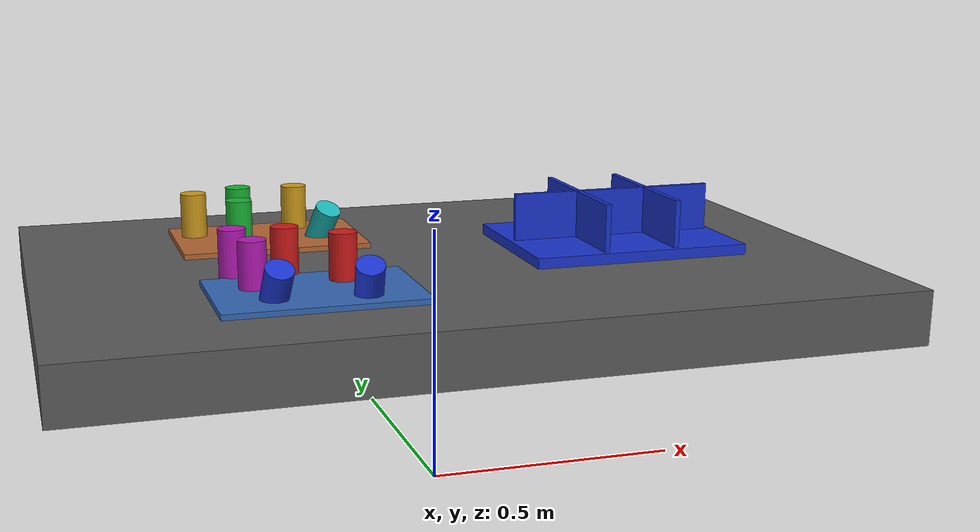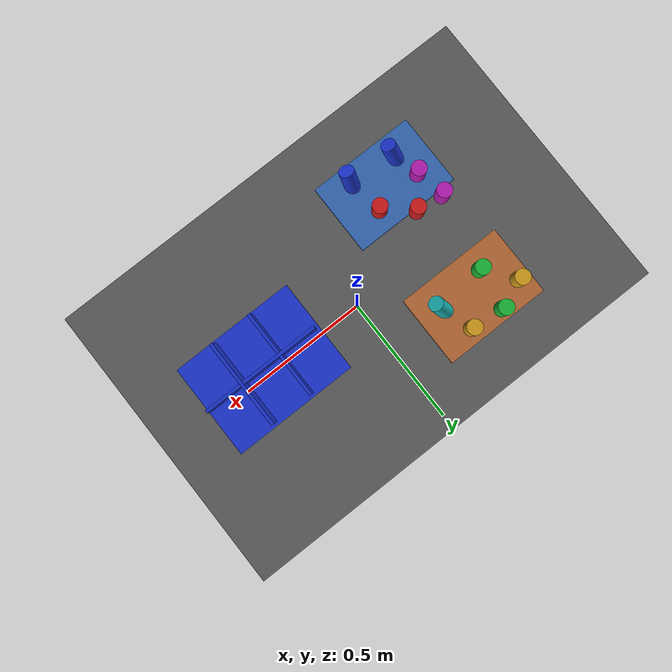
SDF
<?xml version="1.0" ?>
<sdf version="1.9">
  <!-- Standalone M1B scene.  The controller-backed Panda is spawned by the
       existing launch path; this file never alters the frozen M1A cube world. -->
  <world name="industrial_cylinder_v1">
    <physics name="bullet" type="bullet"><max_step_size>0.001</max_step_size><real_time_factor>1.0</real_time_factor></physics>
    <plugin name="gz::sim::systems::Physics" filename="gz-sim-physics-system"><engine><filename>gz-physics-bullet-featherstone-plugin</filename></engine></plugin>
    <plugin name="gz::sim::systems::UserCommands" filename="gz-sim-user-commands-system"/>
    <plugin name="gz::sim::systems::SceneBroadcaster" filename="gz-sim-scene-broadcaster-system"/>
    <plugin name="gz::sim::systems::Sensors" filename="gz-sim-sensors-system"><render_engine>ogre2</render_engine></plugin>
    <gravity>0 0 -9.81</gravity>
    <light type="directional" name="industrial_light"><pose>0 0 5 0 0 0</pose><direction>-0.3 0.2 -0.9</direction><diffuse>0.9 0.9 0.9 1</diffuse></light>
    <model name="industrial_work_table"><static>true</static><link name="link"><pose>0 0 0.4 0 0 0</pose><collision name="collision"><geometry><box><size>1.5 1.0 0.1</size></box></geometry></collision><visual name="visual"><geometry><box><size>1.5 1.0 0.1</size></box></geometry><material><diffuse>0.35 0.35 0.35 1</diffuse></material></visual></link></model>
    <model name="camera_fixture"><static>true</static><link name="camera_rgbd"><pose>-0.80 -0.80 1.40 0 0.77 0.93</pose><sensor name="front_rgbd" type="rgbd_camera"><always_on>1</always_on><update_rate>15</update_rate><topic>/xh/camera/rgbd</topic><camera><horizontal_fov>1.047</horizontal_fov><image><width>640</width><height>480</height><format>R8G8B8</format></image><clip><near>0.1</near><far>4.0</far></clip></camera></sensor></link></model>
    <model name="incoming_zone_a"><static>true</static><link name="link"><pose>-0.28 -0.22 0.455 0 0 0</pose><visual name="visual"><geometry><box><size>0.36 0.24 0.01</size></box></geometry><material><diffuse>0.2 0.4 0.7 1</diffuse></material></visual></link></model>
    <model name="incoming_zone_b"><static>true</static><link name="link"><pose>-0.28 0.22 0.455 0 0 0</pose><visual name="visual"><geometry><box><size>0.36 0.24 0.01</size></box></geometry><material><diffuse>0.7 0.4 0.2 1</diffuse></material></visual></link></model>
    <!-- M1B_RANDOM_PARTS_BEGIN -->
    <model name="cylinder_01"><pose>-0.2171 -0.1653 0.5000 0.0000 0.0000 1.6400</pose><link name="link"><inertial><mass>0.06</mass></inertial><collision name="collision"><geometry><cylinder><radius>0.025</radius><length>0.09</length></cylinder></geometry></collision><visual name="visual"><geometry><cylinder><radius>0.025</radius><length>0.09</length></cylinder></geometry><material><diffuse>0.800 0.100 0.100 1</diffuse><specular>0.15 0.15 0.15 1</specular></material></visual></link></model>
    <model name="cylinder_02"><pose>-0.3228 0.3045 0.5000 3.1416 0.0000 -0.7797</pose><link name="link"><inertial><mass>0.06</mass></inertial><collision name="collision"><geometry><cylinder><radius>0.025</radius><length>0.09</length></cylinder></geometry></collision><visual name="visual"><geometry><cylinder><radius>0.025</radius><length>0.09</length></cylinder></geometry><material><diffuse>0.100 0.700 0.200 1</diffuse><specular>0.15 0.15 0.15 1</specular></material></visual></link></model>
    <model name="cylinder_03"><pose>-0.3577 -0.2777 0.4800 0.4500 -0.3000 0.6743</pose><link name="link"><inertial><mass>0.06</mass></inertial><collision name="collision"><geometry><cylinder><radius>0.025</radius><length>0.09</length></cylinder></geometry></collision><visual name="visual"><geometry><cylinder><radius>0.025</radius><length>0.09</length></cylinder></geometry><material><diffuse>0.100 0.200 0.800 1</diffuse><specular>0.15 0.15 0.15 1</specular></material></visual></link></model>
    <model name="cylinder_04"><pose>-0.4178 0.2647 0.5000 0.0000 0.0000 0.0843</pose><link name="link"><inertial><mass>0.06</mass></inertial><collision name="collision"><geometry><cylinder><radius>0.025</radius><length>0.09</length></cylinder></geometry></collision><visual name="visual"><geometry><cylinder><radius>0.025</radius><length>0.09</length></cylinder></geometry><material><diffuse>0.800 0.600 0.100 1</diffuse><specular>0.15 0.15 0.15 1</specular></material></visual></link></model>
    <model name="cylinder_05"><pose>-0.3981 -0.0831 0.5000 3.1416 0.0000 -0.7560</pose><link name="link"><inertial><mass>0.06</mass></inertial><collision name="collision"><geometry><cylinder><radius>0.025</radius><length>0.09</length></cylinder></geometry></collision><visual name="visual"><geometry><cylinder><radius>0.025</radius><length>0.09</length></cylinder></geometry><material><diffuse>0.700 0.100 0.700 1</diffuse><specular>0.15 0.15 0.15 1</specular></material></visual></link></model>
    <model name="cylinder_06"><pose>-0.1773 0.1879 0.4800 0.4500 -0.3000 0.9948</pose><link name="link"><inertial><mass>0.06</mass></inertial><collision name="collision"><geometry><cylinder><radius>0.025</radius><length>0.09</length></cylinder></geometry></collision><visual name="visual"><geometry><cylinder><radius>0.025</radius><length>0.09</length></cylinder></geometry><material><diffuse>0.100 0.700 0.700 1</diffuse><specular>0.15 0.15 0.15 1</specular></material></visual></link></model>
    <model name="cylinder_07"><pose>-0.3065 -0.0925 0.5000 0.0000 0.0000 0.1853</pose><link name="link"><inertial><mass>0.06</mass></inertial><collision name="collision"><geometry><cylinder><radius>0.025</radius><length>0.09</length></cylinder></geometry></collision><visual name="visual"><geometry><cylinder><radius>0.025</radius><length>0.09</length></cylinder></geometry><material><diffuse>0.800 0.100 0.100 1</diffuse><specular>0.15 0.15 0.15 1</specular></material></visual></link></model>
    <model name="cylinder_08"><pose>-0.3435 0.1686 0.5000 3.1416 0.0000 1.2946</pose><link name="link"><inertial><mass>0.06</mass></inertial><collision name="collision"><geometry><cylinder><radius>0.025</radius><length>0.09</length></cylinder></geometry></collision><visual name="visual"><geometry><cylinder><radius>0.025</radius><length>0.09</length></cylinder></geometry><material><diffuse>0.100 0.700 0.200 1</diffuse><specular>0.15 0.15 0.15 1</specular></material></visual></link></model>
    <model name="cylinder_09"><pose>-0.2019 -0.2921 0.4800 0.4500 -0.3000 0.4057</pose><link name="link"><inertial><mass>0.06</mass></inertial><collision name="collision"><geometry><cylinder><radius>0.025</radius><length>0.09</length></cylinder></geometry></collision><visual name="visual"><geometry><cylinder><radius>0.025</radius><length>0.09</length></cylinder></geometry><material><diffuse>0.100 0.200 0.800 1</diffuse><specular>0.15 0.15 0.15 1</specular></material></visual></link></model>
    <model name="cylinder_10"><pose>-0.2120 0.2932 0.5000 0.0000 0.0000 -0.9450</pose><link name="link"><inertial><mass>0.06</mass></inertial><collision name="collision"><geometry><cylinder><radius>0.025</radius><length>0.09</length></cylinder></geometry></collision><visual name="visual"><geometry><cylinder><radius>0.025</radius><length>0.09</length></cylinder></geometry><material><diffuse>0.800 0.600 0.100 1</diffuse><specular>0.15 0.15 0.15 1</specular></material></visual></link></model>
    <model name="cylinder_11"><pose>-0.3799 -0.1822 0.5000 3.1416 0.0000 1.1349</pose><link name="link"><inertial><mass>0.06</mass></inertial><collision name="collision"><geometry><cylinder><radius>0.025</radius><length>0.09</length></cylinder></geometry></collision><visual name="visual"><geometry><cylinder><radius>0.025</radius><length>0.09</length></cylinder></geometry><material><diffuse>0.700 0.100 0.700 1</diffuse><specular>0.15 0.15 0.15 1</specular></material></visual></link></model>
    <!-- M1B_RANDOM_PARTS_END -->
    <model name="blue_partition_bin"><static>true</static><pose>0.36 0 0.45 0 0 0</pose><link name="link"><collision name="floor"><pose>0 0 0.01 0 0 0</pose><geometry><box><size>0.42 0.32 0.02</size></box></geometry></collision><visual name="floor_visual"><pose>0 0 0.01 0 0 0</pose><geometry><box><size>0.42 0.32 0.02</size></box></geometry><material><diffuse>0.1 0.2 0.8 1</diffuse></material></visual><visual name="row_divider"><pose>0 0 0.06 0 0 0</pose><geometry><box><size>0.40 0.01 0.10</size></box></geometry><material><diffuse>0.1 0.2 0.8 1</diffuse></material></visual><visual name="col_divider_a"><pose>-0.07 0 0.06 0 0 0</pose><geometry><box><size>0.01 0.30 0.10</size></box></geometry><material><diffuse>0.1 0.2 0.8 1</diffuse></material></visual><visual name="col_divider_b"><pose>0.07 0 0.06 0 0 0</pose><geometry><box><size>0.01 0.30 0.10</size></box></geometry><material><diffuse>0.1 0.2 0.8 1</diffuse></material></visual></link></model>
    <!-- Reserved only: second table, bin transport corridor, stackable-bin
         collision volume, and second arm mounting namespace. -->
  </world>
</sdf>
